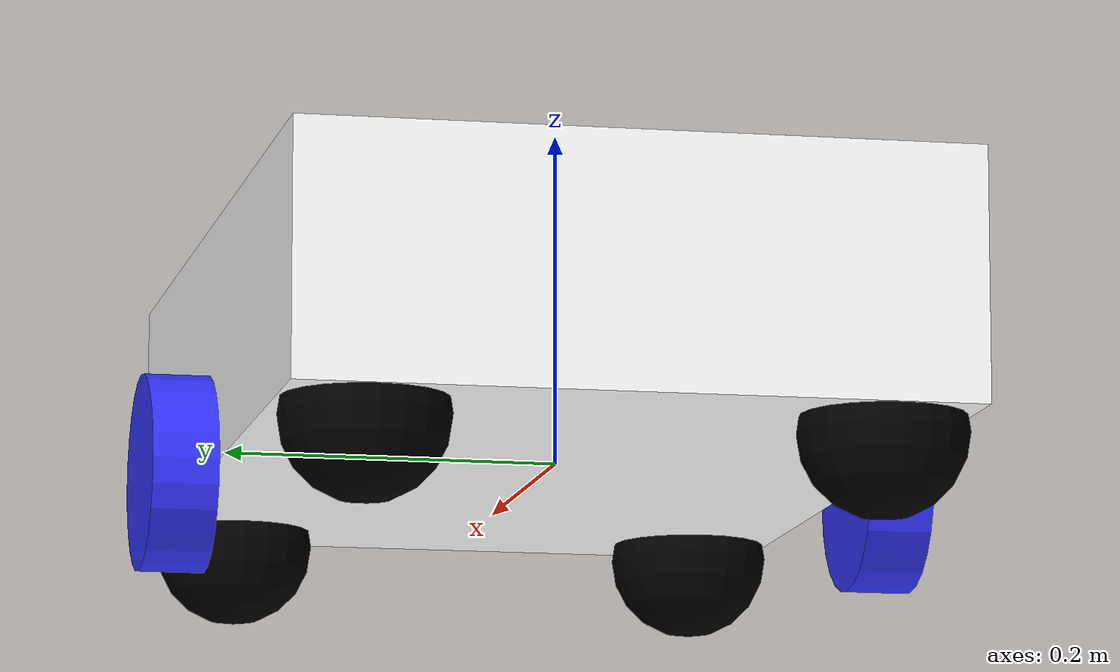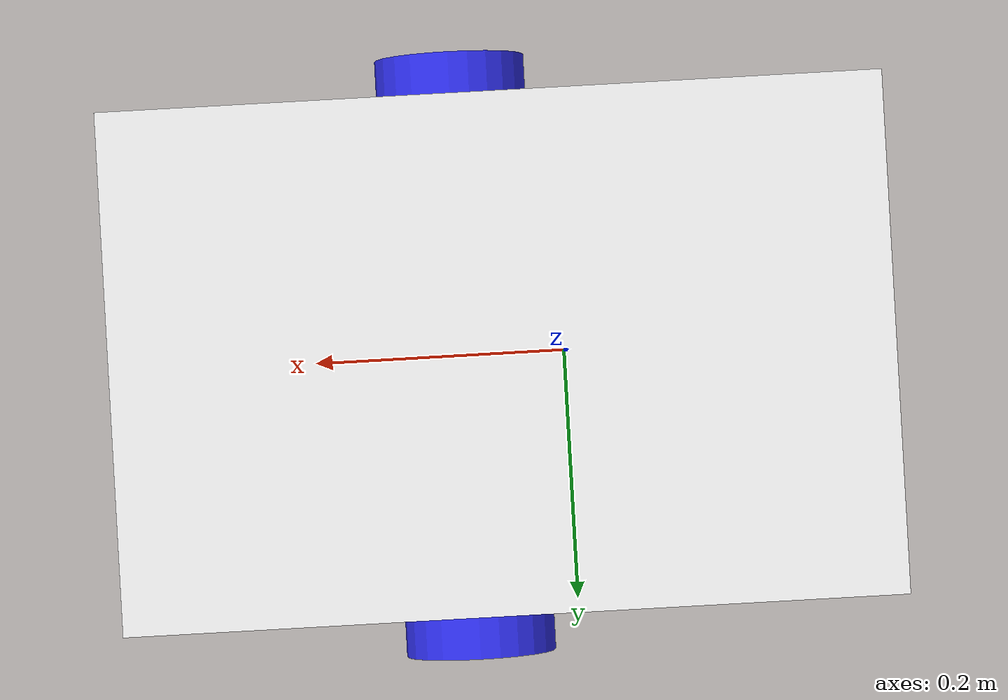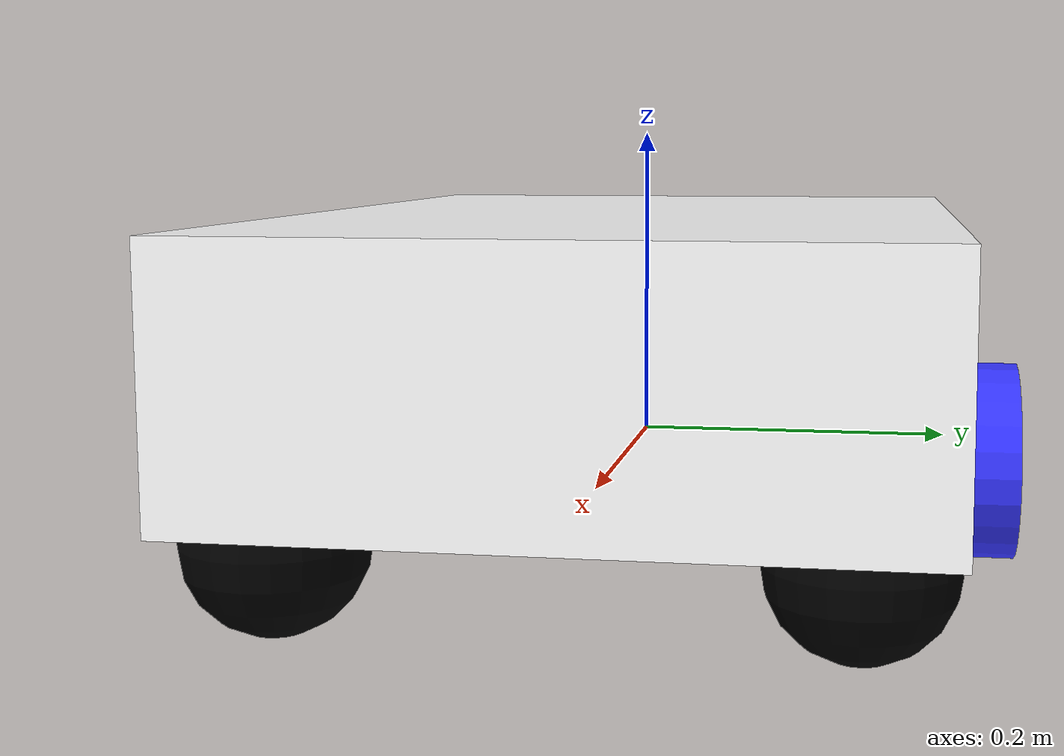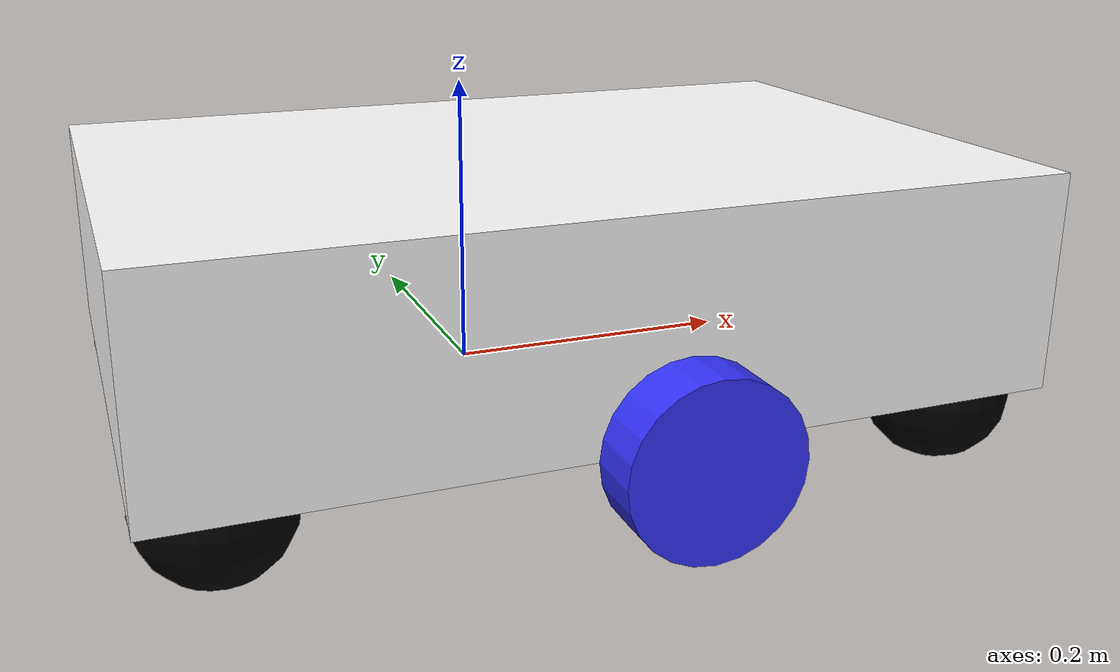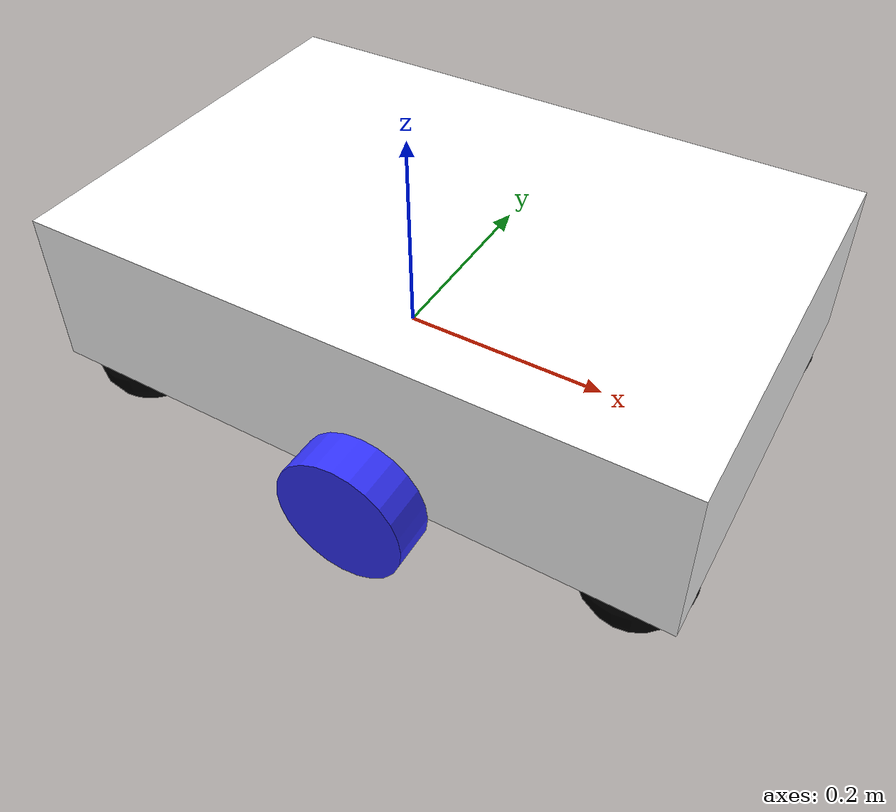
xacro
<?xml version="1.0"?>
<robot xmlns:xacro="http://www.ros.org/wiki/xacro" >

    <xacro:include filename="inertial_macros.xacro"/>

    <material name="white">
        <color rgba="1 1 1 1" />
    </material>

    <material name="orange">
        <color rgba="1 0.3 0.1 1"/>
    </material>

    <material name="blue">
        <color rgba="0.2 0.2 1 1"/>
    </material>

    <material name="black">
        <color rgba="0 0 0 1"/>
    </material>

    <!-- BASE LINK -->
    <link name="base_link"/>

        <!-- BASE_FOOTPRINT LINK -->

    <joint name="base_footprint_joint" type="fixed">
        <parent link="base_link"/>
        <child link="base_footprint"/>
        <origin xyz="0 0 0" rpy="0 0 0"/>
    </joint>

    <link name="base_footprint">
    </link>

    <!-- CHASSIS LINK -->
    <joint name="chassis_joint" type="fixed">
        <parent link="base_link"/>
        <child link="chassis"/>
        <origin xyz="-0.1 0 0"/>
    </joint>

    <link name="chassis">
        <visual>
            <origin xyz="0.15 0 0.075"/>
            <geometry>
                <box size="0.6 0.4 0.15"/>
            </geometry>
            <material name="white"/>
        </visual>
        <collision>
            <origin xyz="0.15 0 0.075"/>
            <geometry>
                <box size="0.6 0.4 0.15"/>
            </geometry>
        </collision>
        <xacro:inertial_box mass="0.5" x="0.6" y="0.4" z="0.15">
            <origin xyz="0.15 0 0.075" rpy="0 0 0"/>
        </xacro:inertial_box>
    </link>

    <!-- WHEELS -->
    <joint name="left_wheel_joint" type="continuous">
        <parent link="base_link"/>
        <child link="left_wheel"/>
        <origin xyz="0.08 0.22 0" rpy="-${pi/2} 0 0" />
        <axis xyz="0 0 1"/>
    </joint>

    <link name="left_wheel">
        <visual>
            <geometry>
                <cylinder radius="0.06" length="0.04"/>
            </geometry>
            <material name="blue"/>
        </visual>
        <collision>
            <geometry>
                <cylinder radius="0.06" length="0.04"/>
            </geometry>
        </collision>
        <xacro:inertial_cylinder mass="0.1" length="0.04" radius="0.06">
            <origin xyz="0 0 0" rpy="0 0 0"/>
        </xacro:inertial_cylinder>
    </link>

    <joint name="right_wheel_joint" type="continuous">
        <parent link="base_link"/>
        <child link="right_wheel"/>
        <origin xyz="0.08 -0.22 0" rpy="${pi/2} 0 0" />
        <axis xyz="0 0 -1"/>
    </joint>

    <link name="right_wheel">
        <visual>
            <geometry>
                <cylinder radius="0.06" length="0.04"/>
            </geometry>
            <material name="blue"/>
        </visual>
        <collision>
            <geometry>
                <cylinder radius="0.06" length="0.04"/>
            </geometry>
        </collision>
        <xacro:inertial_cylinder mass="0.1" length="0.04" radius="0.06">
            <origin xyz="0 0 0" rpy="0 0 0"/>
        </xacro:inertial_cylinder>
    </link>

    <!-- FOUR CORNER CASTERS -->
    <!-- Front Left Caster -->
    <joint name="front_left_caster_joint" type="fixed">
        <parent link="chassis"/>
        <child link="front_left_caster"/>
        <origin xyz="0.40 0.15 -0.01"/>
    </joint>

    <link name="front_left_caster">
        <visual>
            <geometry>
                <sphere radius="0.05"/>
            </geometry>
            <material name="black"/>
        </visual>
        <collision>
            <geometry>
                <sphere radius="0.05"/>
            </geometry>
        </collision>
        <xacro:inertial_sphere mass="0.1" radius="0.05">
            <origin xyz="0 0 0" rpy="0 0 0"/>
        </xacro:inertial_sphere>
    </link>

    <!-- Front Right Caster -->
    <joint name="front_right_caster_joint" type="fixed">
        <parent link="chassis"/>
        <child link="front_right_caster"/>
        <origin xyz="0.40 -0.15 -0.01"/>
    </joint>

    <link name="front_right_caster">
        <visual>
            <geometry>
                <sphere radius="0.05"/>
            </geometry>
            <material name="black"/>
        </visual>
        <collision>
            <geometry>
                <sphere radius="0.05"/>
            </geometry>
        </collision>
        <xacro:inertial_sphere mass="0.1" radius="0.05">
            <origin xyz="0 0 0" rpy="0 0 0"/>
        </xacro:inertial_sphere>
    </link>

    <!-- Back Left Caster -->
    <joint name="back_left_caster_joint" type="fixed">
        <parent link="chassis"/>
        <child link="back_left_caster"/>
        <origin xyz="-0.10 0.15 -0.01"/>
    </joint>

    <link name="back_left_caster">
        <visual>
            <geometry>
                <sphere radius="0.05"/>
            </geometry>
            <material name="black"/>
        </visual>
        <collision>
            <geometry>
                <sphere radius="0.05"/>
            </geometry>
        </collision>
        <xacro:inertial_sphere mass="0.1" radius="0.05">
            <origin xyz="0 0 0" rpy="0 0 0"/>
        </xacro:inertial_sphere>
    </link>

    <!-- Back Right Caster -->
    <joint name="back_right_caster_joint" type="fixed">
        <parent link="chassis"/>
        <child link="back_right_caster"/>
        <origin xyz="-0.10 -0.15 -0.01"/>
    </joint>

    <link name="back_right_caster">
        <visual>
            <geometry>
                <sphere radius="0.05"/>
            </geometry>
            <material name="black"/>
        </visual>
        <collision>
            <geometry>
                <sphere radius="0.05"/>
            </geometry>
        </collision>
        <xacro:inertial_sphere mass="0.1" radius="0.05">
            <origin xyz="0 0 0" rpy="0 0 0"/>
        </xacro:inertial_sphere>
    </link>

</robot>
